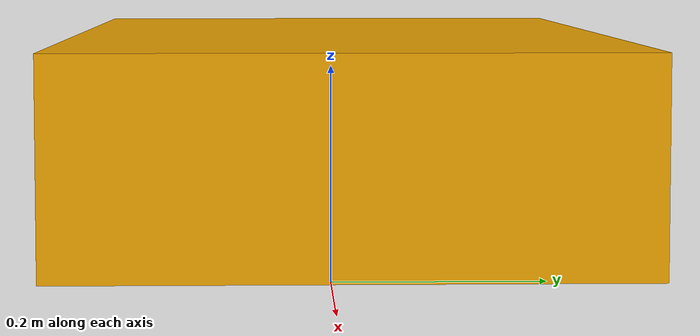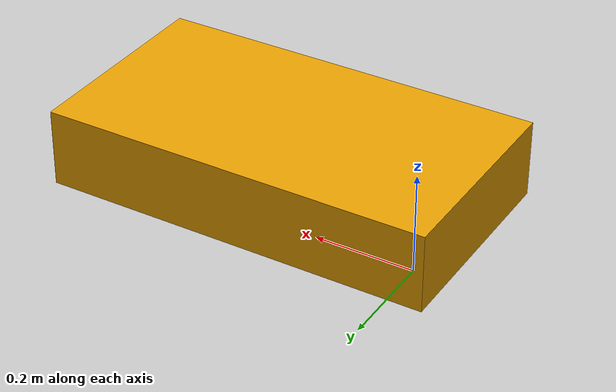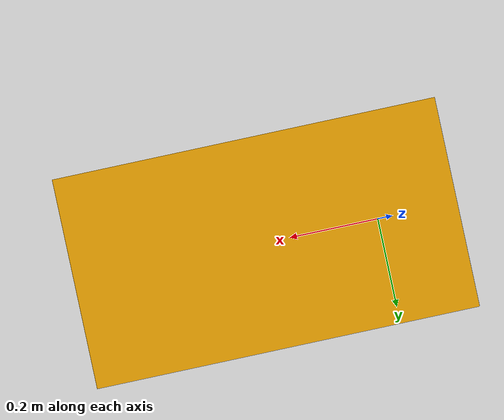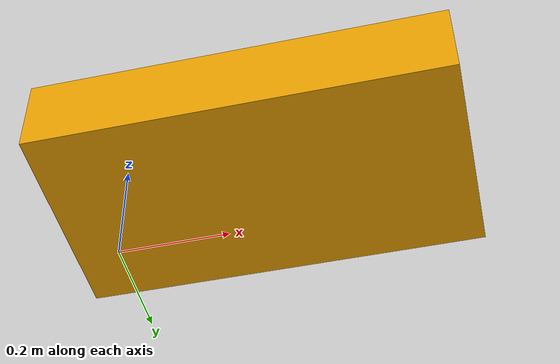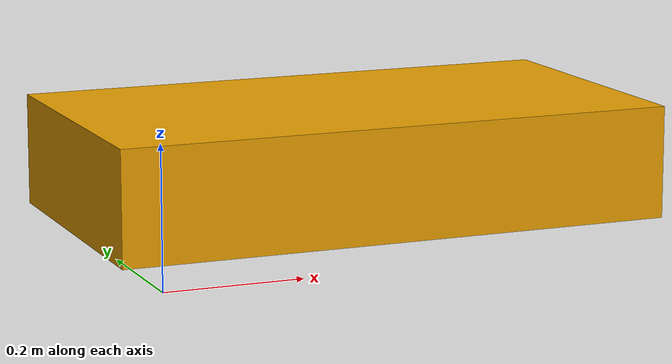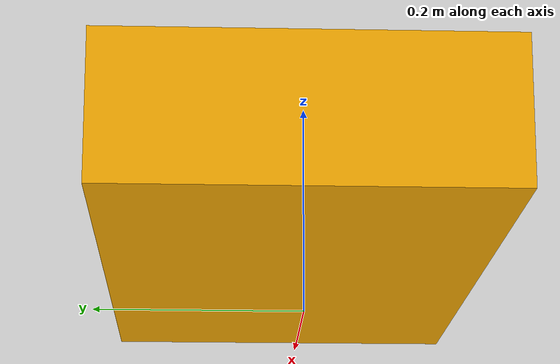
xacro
<?xml version="1.0"?>
<robot name="guide_car" xmlns:xacro="http://www.ros.org/wiki/xacro">
  <xacro:property name="base_length" value="0.75"/>   <!-- RC car body, 75 x 41 cm -->
  <xacro:property name="rear_overhang" value="0.12"/> <!-- rear axle to the back of the body: measure -->
  <xacro:property name="base_width" value="0.41"/>
  <xacro:property name="base_height" value="0.15"/>
  <xacro:property name="wheel_radius" value="0.09"/>  <!-- 18 cm wheels -->
  <!-- Stereo pair: 10 cm apart (lens centres), level, facing forward. With the 50 deg
       webcams and a 128-disparity search, stereo sees from 0.54 m out (spec section 3). -->
  <xacro:property name="cam_x" value="0.50"/>       <!-- ahead of the rear axle; the body ends at 0.63 -->
  <xacro:property name="cam_z" value="0.28"/>       <!-- lens height above the floor (the RC car's mount) -->
  <xacro:property name="cam_pitch" value="-0.09"/>
  <xacro:property name="stereo_baseline" value="0.10"/>

  <link name="base_link">
    <visual>
      <origin xyz="${base_length/2 - rear_overhang} 0 ${wheel_radius + base_height/2}"/>
      <geometry><box size="${base_length} ${base_width} ${base_height}"/></geometry>
    </visual>
    <collision>
      <origin xyz="${base_length/2 - rear_overhang} 0 ${wheel_radius + base_height/2}"/>
      <geometry><box size="${base_length} ${base_width} ${base_height}"/></geometry>
    </collision>
  </link>
  <!-- No base_footprint: base_link is on the floor already, and the EKF is its only parent. -->

  <xacro:macro name="camera" params="name x y z pitch yaw">
    <link name="${name}_link"/>
    <joint name="${name}_joint" type="fixed">
      <parent link="base_link"/><child link="${name}_link"/>
      <origin xyz="${x} ${y} ${z}" rpy="0 ${pitch} ${yaw}"/>
    </joint>
    <!-- Optical frame: z forward, x right, y down (REP-103). -->
    <link name="${name}_optical_frame"/>
    <joint name="${name}_optical_joint" type="fixed">
      <parent link="${name}_link"/><child link="${name}_optical_frame"/>
      <origin xyz="0 0 0" rpy="${-pi/2} 0 ${-pi/2}"/>
    </joint>
  </xacro:macro>

  <xacro:camera name="left_camera" x="${cam_x}" y="${stereo_baseline/2}" z="${cam_z}" pitch="${cam_pitch}" yaw="0"/>
  <xacro:camera name="right_camera" x="${cam_x}" y="${-stereo_baseline/2}" z="${cam_z}" pitch="${cam_pitch}" yaw="0"/>
  <!-- cameras:=iphone (spec section 19): the iPhone upright on the same mount, rear camera
       forward. Match guide.yaml iphone mount_x / mount_y. -->
  <xacro:camera name="iphone_camera" x="${cam_x}" y="0" z="${cam_z}" pitch="${cam_pitch}" yaw="0"/>
  <!-- Phase 6 rear camera, facing backwards (with cameras:=iphone, the webcam). -->
  <xacro:camera name="rear_camera" x="${-rear_overhang}" y="0" z="${cam_z}" pitch="0.1" yaw="${pi}"/>

  <!-- Phone lying flat, screen up, top edge forward (spec section 3). -->
  <link name="phone_link"/>
  <joint name="phone_joint" type="fixed">
    <parent link="base_link"/><child link="phone_link"/>
    <origin xyz="0 0 ${wheel_radius + base_height + 0.01}"/>
  </joint>

  <!-- External GPS antenna on top (spec section 3). -->
  <link name="gps_link"/>
  <joint name="gps_joint" type="fixed">
    <parent link="base_link"/><child link="gps_link"/>
    <origin xyz="-0.1 0 ${cam_z + 0.05}"/>
  </joint>
</robot>
